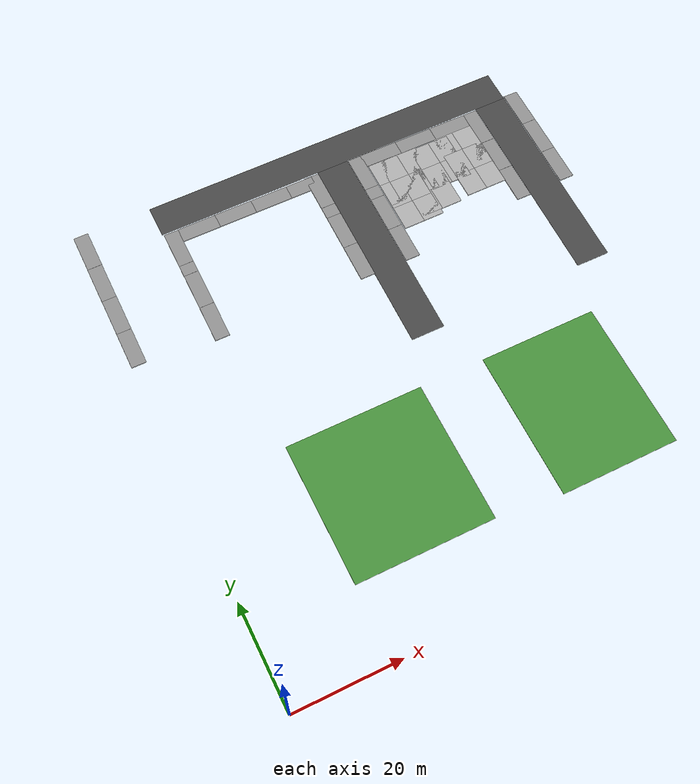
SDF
<sdf version="1.6">
 <world name="default">
  <model name="grey_wall_clone_clone_9_clone_7">
   <static>1</static>
   <link name="link">
    <pose>0 0 1.4 0 -0 0</pose>
    <collision name="collision"><geometry><box><size>7.5 0.2 2.8</size></box></geometry></collision>
    <visual name="visual">
     <cast_shadows>0</cast_shadows>
     <geometry><box><size>7.5 0.2 2.8</size></box></geometry>
     <material>
      <script>
       <uri>model://grey_wall/materials/scripts</uri>
       <uri>model://grey_wall/materials/textures</uri>
       <name>vrc/grey_wall</name>
      </script>
     </material>
    </visual>
   </link>
   <pose>3.09587 70.7495 -0.016993 -1.57343 0.001892 1.56332</pose>
  </model>
  <model name="grey_wall_clone_clone_9_clone_8">
   <static>1</static>
   <link name="link">
    <pose>0 0 1.4 0 -0 0</pose>
    <collision name="collision"><geometry><box><size>7.5 0.2 2.8</size></box></geometry></collision>
    <visual name="visual">
     <cast_shadows>0</cast_shadows>
     <geometry><box><size>7.5 0.2 2.8</size></box></geometry>
     <material>
      <script>
       <uri>model://grey_wall/materials/scripts</uri>
       <uri>model://grey_wall/materials/textures</uri>
       <name>vrc/grey_wall</name>
      </script>
     </material>
    </visual>
   </link>
   <pose>3.15713 78.2163 -0.016993 -1.57343 0.001892 1.56332</pose>
  </model>
  <model name="grey_wall_clone_clone_9_clone_9">
   <static>1</static>
   <link name="link">
    <pose>0 0 1.4 0 -0 0</pose>
    <collision name="collision"><geometry><box><size>7.5 0.2 2.8</size></box></geometry></collision>
    <visual name="visual">
     <cast_shadows>0</cast_shadows>
     <geometry><box><size>7.5 0.2 2.8</size></box></geometry>
     <material>
      <script>
       <uri>model://grey_wall/materials/scripts</uri>
       <uri>model://grey_wall/materials/textures</uri>
       <name>vrc/grey_wall</name>
      </script>
     </material>
    </visual>
   </link>
   <pose>3.19599 85.6747 -0.016993 -1.57343 0.001892 1.56332</pose>
  </model>
  <model name="grey_wall_clone_clone_9_clone_10">
   <static>1</static>
   <link name="link">
    <pose>0 0 1.4 0 -0 0</pose>
    <collision name="collision"><geometry><box><size>7.5 0.2 2.8</size></box></geometry></collision>
    <visual name="visual">
     <cast_shadows>0</cast_shadows>
     <geometry><box><size>7.5 0.2 2.8</size></box></geometry>
     <material>
      <script>
       <uri>model://grey_wall/materials/scripts</uri>
       <uri>model://grey_wall/materials/textures</uri>
       <name>vrc/grey_wall</name>
      </script>
     </material>
    </visual>
   </link>
   <pose>3.27466 93.1318 -0.016993 -1.57343 0.001892 1.56332</pose>
  </model>
  <model name="grey_wall_clone_clone_9_clone_26_clone_0_clone_2_clone_2">
   <static>1</static>
   <link name="link">
    <pose>0 0 1.4 0 -0 0</pose>
    <collision name="collision"><geometry><box><size>7.5 0.2 2.8</size></box></geometry></collision>
    <visual name="visual">
     <cast_shadows>0</cast_shadows>
     <geometry><box><size>7.5 0.2 2.8</size></box></geometry>
     <material>
      <script>
       <uri>model://grey_wall/materials/scripts</uri>
       <uri>model://grey_wall/materials/textures</uri>
       <name>vrc/grey_wall</name>
      </script>
     </material>
    </visual>
   </link>
   <pose>91.1323 72.1084 -0.017166 -1.57343 0.001892 1.56332</pose>
  </model>
  <model name="grey_wall_clone_clone_9_clone_26_clone_0_clone_2_clone_3">
   <static>1</static>
   <link name="link">
    <pose>0 0 1.4 0 -0 0</pose>
    <collision name="collision"><geometry><box><size>7.5 0.2 2.8</size></box></geometry></collision>
    <visual name="visual">
     <cast_shadows>0</cast_shadows>
     <geometry><box><size>7.5 0.2 2.8</size></box></geometry>
     <material>
      <script>
       <uri>model://grey_wall/materials/scripts</uri>
       <uri>model://grey_wall/materials/textures</uri>
       <name>vrc/grey_wall</name>
      </script>
     </material>
    </visual>
   </link>
   <pose>91.2109 79.4437 -0.017166 -1.57343 0.001892 1.56332</pose>
  </model>
  <model name="grey_wall_clone_clone_9_clone_26_clone_0_clone_2_clone_4">
   <static>1</static>
   <link name="link">
    <pose>0 0 1.4 0 -0 0</pose>
    <collision name="collision"><geometry><box><size>7.5 0.2 2.8</size></box></geometry></collision>
    <visual name="visual">
     <cast_shadows>0</cast_shadows>
     <geometry><box><size>7.5 0.2 2.8</size></box></geometry>
     <material>
      <script>
       <uri>model://grey_wall/materials/scripts</uri>
       <uri>model://grey_wall/materials/textures</uri>
       <name>vrc/grey_wall</name>
      </script>
     </material>
    </visual>
   </link>
   <pose>91.2554 86.9199 -0.017166 -1.57343 0.001892 1.56332</pose>
  </model>
  <model name="grey_wall_clone_clone_9_clone_26_clone_0_clone_2_clone_4_clone_2_clone_19">
   <static>1</static>
   <link name="link">
    <pose>0 0 1.4 0 -0 0</pose>
    <collision name="collision"><geometry><box><size>7.5 0.2 2.8</size></box></geometry></collision>
    <visual name="visual">
     <cast_shadows>0</cast_shadows>
     <geometry><box><size>7.5 0.2 2.8</size></box></geometry>
     <material>
      <script>
       <uri>model://grey_wall/materials/scripts</uri>
       <uri>model://grey_wall/materials/textures</uri>
       <name>vrc/grey_wall</name>
      </script>
     </material>
    </visual>
   </link>
   <pose>81.8274 86.4169 -0.017262 -1.57343 0.001892 1.56332</pose>
  </model>
  <model name="grey_wall_clone_clone_9_clone_26_clone_0_clone_2_clone_4_clone_2_clone_20">
   <static>1</static>
   <link name="link">
    <pose>0 0 1.4 0 -0 0</pose>
    <collision name="collision"><geometry><box><size>7.5 0.2 2.8</size></box></geometry></collision>
    <visual name="visual">
     <cast_shadows>0</cast_shadows>
     <geometry><box><size>7.5 0.2 2.8</size></box></geometry>
     <material>
      <script>
       <uri>model://grey_wall/materials/scripts</uri>
       <uri>model://grey_wall/materials/textures</uri>
       <name>vrc/grey_wall</name>
      </script>
     </material>
    </visual>
   </link>
   <pose>81.7695 79.277 -0.017166 -1.57343 0.001892 1.56332</pose>
  </model>
  <model name="grey_wall_clone_clone_9_clone_26_clone_0_clone_2_clone_4_clone_2_clone_21">
   <static>1</static>
   <link name="link">
    <pose>0 0 1.4 0 -0 0</pose>
    <collision name="collision"><geometry><box><size>7.5 0.2 2.8</size></box></geometry></collision>
    <visual name="visual">
     <cast_shadows>0</cast_shadows>
     <geometry><box><size>7.5 0.2 2.8</size></box></geometry>
     <material>
      <script>
       <uri>model://grey_wall/materials/scripts</uri>
       <uri>model://grey_wall/materials/textures</uri>
       <name>vrc/grey_wall</name>
      </script>
     </material>
    </visual>
   </link>
   <pose>81.7291 71.8637 -0.017166 -1.57343 0.001892 1.56332</pose>
  </model>
  <model name="grey_wall_clone_clone_9_clone_26_clone_0_clone_2_clone_4_clone_2_clone_27">
   <static>1</static>
   <link name="link">
    <pose>0 0 1.4 0 -0 0</pose>
    <collision name="collision"><geometry><box><size>7.5 0.2 2.8</size></box></geometry></collision>
    <visual name="visual">
     <cast_shadows>0</cast_shadows>
     <geometry><box><size>7.5 0.2 2.8</size></box></geometry>
     <material>
      <script>
       <uri>model://grey_wall/materials/scripts</uri>
       <uri>model://grey_wall/materials/textures</uri>
       <name>vrc/grey_wall</name>
      </script>
     </material>
    </visual>
   </link>
   <pose>56.6428 69.1546 -0.017166 -1.57343 0.001892 1.56332</pose>
  </model>
  <model name="grey_wall_clone_clone_9_clone_26_clone_0_clone_2_clone_4_clone_2_clone_28">
   <static>1</static>
   <link name="link">
    <pose>0 0 1.4 0 -0 0</pose>
    <collision name="collision"><geometry><box><size>7.5 0.2 2.8</size></box></geometry></collision>
    <visual name="visual">
     <cast_shadows>0</cast_shadows>
     <geometry><box><size>7.5 0.2 2.8</size></box></geometry>
     <material>
      <script>
       <uri>model://grey_wall/materials/scripts</uri>
       <uri>model://grey_wall/materials/textures</uri>
       <name>vrc/grey_wall</name>
      </script>
     </material>
    </visual>
   </link>
   <pose>56.6949 76.5854 -0.017166 -1.57343 0.001892 1.56332</pose>
  </model>
  <model name="grey_wall_clone_clone_9_clone_26_clone_0_clone_2_clone_4_clone_2_clone_29">
   <static>1</static>
   <link name="link">
    <pose>0 0 1.4 0 -0 0</pose>
    <collision name="collision"><geometry><box><size>7.5 0.2 2.8</size></box></geometry></collision>
    <visual name="visual">
     <cast_shadows>0</cast_shadows>
     <geometry><box><size>7.5 0.2 2.8</size></box></geometry>
     <material>
      <script>
       <uri>model://grey_wall/materials/scripts</uri>
       <uri>model://grey_wall/materials/textures</uri>
       <name>vrc/grey_wall</name>
      </script>
     </material>
    </visual>
   </link>
   <pose>56.747 83.9835 -0.017166 -1.57343 0.001892 1.56332</pose>
  </model>
  <model name="grey_wall_clone_clone_9_clone_26_clone_0_clone_2_clone_4_clone_2_clone_30">
   <static>1</static>
   <link name="link">
    <pose>0 0 1.4 0 -0 0</pose>
    <collision name="collision"><geometry><box><size>7.5 0.2 2.8</size></box></geometry></collision>
    <visual name="visual">
     <cast_shadows>0</cast_shadows>
     <geometry><box><size>7.5 0.2 2.8</size></box></geometry>
     <material>
      <script>
       <uri>model://grey_wall/materials/scripts</uri>
       <uri>model://grey_wall/materials/textures</uri>
       <name>vrc/grey_wall</name>
      </script>
     </material>
    </visual>
   </link>
   <pose>56.771 86.5557 -0.017166 -1.57343 0.001892 1.56332</pose>
  </model>
  <model name="grey_wall_clone_clone_9_clone_26_clone_0_clone_2_clone_4_clone_2_clone_33">
   <static>1</static>
   <link name="link">
    <pose>0 0 1.4 0 -0 0</pose>
    <collision name="collision"><geometry><box><size>7.5 0.2 2.8</size></box></geometry></collision>
    <visual name="visual">
     <cast_shadows>0</cast_shadows>
     <geometry><box><size>7.5 0.2 2.8</size></box></geometry>
     <material>
      <script>
       <uri>model://grey_wall/materials/scripts</uri>
       <uri>model://grey_wall/materials/textures</uri>
       <name>vrc/grey_wall</name>
      </script>
     </material>
    </visual>
   </link>
   <pose>47.4381 69.2125 -0.017166 -1.57343 0.001892 1.56332</pose>
  </model>
  <model name="grey_wall_clone_clone_9_clone_26_clone_0_clone_2_clone_4_clone_2_clone_34">
   <static>1</static>
   <link name="link">
    <pose>0 0 1.4 0 -0 0</pose>
    <collision name="collision"><geometry><box><size>7.5 0.2 2.8</size></box></geometry></collision>
    <visual name="visual">
     <cast_shadows>0</cast_shadows>
     <geometry><box><size>7.5 0.2 2.8</size></box></geometry>
     <material>
      <script>
       <uri>model://grey_wall/materials/scripts</uri>
       <uri>model://grey_wall/materials/textures</uri>
       <name>vrc/grey_wall</name>
      </script>
     </material>
    </visual>
   </link>
   <pose>47.4903 76.6903 -0.017166 -1.57343 0.001892 1.56332</pose>
  </model>
  <model name="grey_wall_clone_clone_9_clone_26_clone_0_clone_2_clone_4_clone_2_clone_35">
   <static>1</static>
   <link name="link">
    <pose>0 0 1.4 0 -0 0</pose>
    <collision name="collision"><geometry><box><size>7.5 0.2 2.8</size></box></geometry></collision>
    <visual name="visual">
     <cast_shadows>0</cast_shadows>
     <geometry><box><size>7.5 0.2 2.8</size></box></geometry>
     <material>
      <script>
       <uri>model://grey_wall/materials/scripts</uri>
       <uri>model://grey_wall/materials/textures</uri>
       <name>vrc/grey_wall</name>
      </script>
     </material>
    </visual>
   </link>
   <pose>47.5425 83.9495 -0.017166 -1.57343 0.001892 1.56332</pose>
  </model>
  <model name="grey_wall_clone_clone_9_clone_26_clone_0_clone_2_clone_4_clone_2_clone_36">
   <static>1</static>
   <link name="link">
    <pose>0 0 1.4 0 -0 0</pose>
    <collision name="collision"><geometry><box><size>7.5 0.2 2.8</size></box></geometry></collision>
    <visual name="visual">
     <cast_shadows>0</cast_shadows>
     <geometry><box><size>7.5 0.2 2.8</size></box></geometry>
     <material>
      <script>
       <uri>model://grey_wall/materials/scripts</uri>
       <uri>model://grey_wall/materials/textures</uri>
       <name>vrc/grey_wall</name>
      </script>
     </material>
    </visual>
   </link>
   <pose>47.5621 86.4063 -0.017166 -1.57343 0.001892 1.56332</pose>
  </model>
  <model name="grey_wall_clone_clone_9_clone_26_clone_0_clone_2_clone_4_clone_2_clone_39">
   <static>1</static>
   <link name="link">
    <pose>0 0 1.4 0 -0 0</pose>
    <collision name="collision"><geometry><box><size>7.5 0.2 2.8</size></box></geometry></collision>
    <visual name="visual">
     <cast_shadows>0</cast_shadows>
     <geometry><box><size>7.5 0.2 2.8</size></box></geometry>
     <material>
      <script>
       <uri>model://grey_wall/materials/scripts</uri>
       <uri>model://grey_wall/materials/textures</uri>
       <name>vrc/grey_wall</name>
      </script>
     </material>
    </visual>
   </link>
   <pose>18.5087 69.2251 -0.017166 -1.57343 0.001892 1.56332</pose>
  </model>
  <model name="grey_wall_clone_clone_9_clone_26_clone_0_clone_2_clone_4_clone_2_clone_40">
   <static>1</static>
   <link name="link">
    <pose>0 0 1.4 0 -0 0</pose>
    <collision name="collision"><geometry><box><size>7.5 0.2 2.8</size></box></geometry></collision>
    <visual name="visual">
     <cast_shadows>0</cast_shadows>
     <geometry><box><size>7.5 0.2 2.8</size></box></geometry>
     <material>
      <script>
       <uri>model://grey_wall/materials/scripts</uri>
       <uri>model://grey_wall/materials/textures</uri>
       <name>vrc/grey_wall</name>
      </script>
     </material>
    </visual>
   </link>
   <pose>18.5782 76.6614 -0.017166 -1.57343 0.001892 1.56332</pose>
  </model>
  <model name="grey_wall_clone_clone_9_clone_26_clone_0_clone_2_clone_4_clone_2_clone_41">
   <static>1</static>
   <link name="link">
    <pose>0 0 1.4 0 -0 0</pose>
    <collision name="collision"><geometry><box><size>7.5 0.2 2.8</size></box></geometry></collision>
    <visual name="visual">
     <cast_shadows>0</cast_shadows>
     <geometry><box><size>7.5 0.2 2.8</size></box></geometry>
     <material>
      <script>
       <uri>model://grey_wall/materials/scripts</uri>
       <uri>model://grey_wall/materials/textures</uri>
       <name>vrc/grey_wall</name>
      </script>
     </material>
    </visual>
   </link>
   <pose>18.6154 84.0721 -0.017166 -1.57343 0.001892 1.56332</pose>
  </model>
  <model name="grey_wall_clone_clone_9_clone_26_clone_0_clone_2_clone_4_clone_2_clone_42">
   <static>1</static>
   <link name="link">
    <pose>0 0 1.4 0 -0 0</pose>
    <collision name="collision"><geometry><box><size>7.5 0.2 2.8</size></box></geometry></collision>
    <visual name="visual">
     <cast_shadows>0</cast_shadows>
     <geometry><box><size>7.5 0.2 2.8</size></box></geometry>
     <material>
      <script>
       <uri>model://grey_wall/materials/scripts</uri>
       <uri>model://grey_wall/materials/textures</uri>
       <name>vrc/grey_wall</name>
      </script>
     </material>
    </visual>
   </link>
   <pose>18.6449 86.4101 -0.017166 -1.57343 0.001892 1.56332</pose>
  </model>
  <model name="grey_wall_clone_clone_10_clone_16">
   <static>1</static>
   <link name="link">
    <pose>0 0 1.4 0 -0 0</pose>
    <collision name="collision"><geometry><box><size>7.5 0.2 2.8</size></box></geometry></collision>
    <visual name="visual">
     <cast_shadows>0</cast_shadows>
     <geometry><box><size>7.5 0.2 2.8</size></box></geometry>
     <material>
      <script>
       <uri>model://grey_wall/materials/scripts</uri>
       <uri>model://grey_wall/materials/textures</uri>
       <name>vrc/grey_wall</name>
      </script>
     </material>
    </visual>
   </link>
   <pose>22.3675 90.183 -0.013396 -1.5862 0.002658 3.13547</pose>
  </model>
  <model name="grey_wall_clone_clone_10_clone_17">
   <static>1</static>
   <link name="link">
    <pose>0 0 1.4 0 -0 0</pose>
    <collision name="collision"><geometry><box><size>7.5 0.2 2.8</size></box></geometry></collision>
    <visual name="visual">
     <cast_shadows>0</cast_shadows>
     <geometry><box><size>7.5 0.2 2.8</size></box></geometry>
     <material>
      <script>
       <uri>model://grey_wall/materials/scripts</uri>
       <uri>model://grey_wall/materials/textures</uri>
       <name>vrc/grey_wall</name>
      </script>
     </material>
    </visual>
   </link>
   <pose>29.7513 90.1649 -0.013396 -1.5862 0.002658 3.13547</pose>
  </model>
  <model name="grey_wall_clone_clone_10_clone_18">
   <static>1</static>
   <link name="link">
    <pose>0 0 1.4 0 -0 0</pose>
    <collision name="collision"><geometry><box><size>7.5 0.2 2.8</size></box></geometry></collision>
    <visual name="visual">
     <cast_shadows>0</cast_shadows>
     <geometry><box><size>7.5 0.2 2.8</size></box></geometry>
     <material>
      <script>
       <uri>model://grey_wall/materials/scripts</uri>
       <uri>model://grey_wall/materials/textures</uri>
       <name>vrc/grey_wall</name>
      </script>
     </material>
    </visual>
   </link>
   <pose>37.0434 90.1315 -0.013396 -1.5862 0.002658 3.13547</pose>
  </model>
  <model name="grey_wall_clone_clone_10_clone_19">
   <static>1</static>
   <link name="link">
    <pose>0 0 1.4 0 -0 0</pose>
    <collision name="collision"><geometry><box><size>7.5 0.2 2.8</size></box></geometry></collision>
    <visual name="visual">
     <cast_shadows>0</cast_shadows>
     <geometry><box><size>7.5 0.2 2.8</size></box></geometry>
     <material>
      <script>
       <uri>model://grey_wall/materials/scripts</uri>
       <uri>model://grey_wall/materials/textures</uri>
       <name>vrc/grey_wall</name>
      </script>
     </material>
    </visual>
   </link>
   <pose>42.3302 90.107 -0.013396 -1.5862 0.002658 3.13547</pose>
  </model>
  <model name="grey_wall_clone_clone_10_clone_23_clone_clone">
   <static>1</static>
   <link name="link">
    <pose>0 0 1.4 0 -0 0</pose>
    <collision name="collision"><geometry><box><size>7.5 0.2 2.8</size></box></geometry></collision>
    <visual name="visual">
     <cast_shadows>0</cast_shadows>
     <geometry><box><size>7.5 0.2 2.8</size></box></geometry>
     <material>
      <script>
       <uri>model://grey_wall/materials/scripts</uri>
       <uri>model://grey_wall/materials/textures</uri>
       <name>vrc/grey_wall</name>
      </script>
     </material>
    </visual>
   </link>
   <pose>75.3474 90.1916 -0.013396 -1.5862 0.002658 3.13547</pose>
  </model>
  <model name="grey_wall_clone_clone_10_clone_23_clone_clone_0">
   <static>1</static>
   <link name="link">
    <pose>0 0 1.4 0 -0 0</pose>
    <collision name="collision"><geometry><box><size>7.5 0.2 2.8</size></box></geometry></collision>
    <visual name="visual">
     <cast_shadows>0</cast_shadows>
     <geometry><box><size>7.5 0.2 2.8</size></box></geometry>
     <material>
      <script>
       <uri>model://grey_wall/materials/scripts</uri>
       <uri>model://grey_wall/materials/textures</uri>
       <name>vrc/grey_wall</name>
      </script>
     </material>
    </visual>
   </link>
   <pose>67.8565 90.2403 -0.013396 -1.5862 0.002658 3.13547</pose>
  </model>
  <model name="grey_wall_clone_clone_10_clone_23_clone_clone_1">
   <static>1</static>
   <link name="link">
    <pose>0 0 1.4 0 -0 0</pose>
    <collision name="collision"><geometry><box><size>7.5 0.2 2.8</size></box></geometry></collision>
    <visual name="visual">
     <cast_shadows>0</cast_shadows>
     <geometry><box><size>7.5 0.2 2.8</size></box></geometry>
     <material>
      <script>
       <uri>model://grey_wall/materials/scripts</uri>
       <uri>model://grey_wall/materials/textures</uri>
       <name>vrc/grey_wall</name>
      </script>
     </material>
    </visual>
   </link>
   <pose>60.364 90.3071 0.001726 -1.5862 0.002658 3.13547</pose>
  </model>
  <model name="Road_clone_0">
   <static>1</static>
   <link name="link_0">
    <inertial>
     <mass>3902.93</mass>
     <inertia><ixx>13288.4</ixx><ixy>0</ixy><ixz>0</ixz><iyy>107351</iyy><iyz>0</iyz><izz>120639</izz></inertia>
    </inertial>
    <gravity>0</gravity>
    <self_collide>1</self_collide>
    <visual name="visual">
     <geometry><box><size>72.6629 6.39189 0.01701</size></box></geometry>
     <material>
      <lighting>1</lighting>
      <script><uri>file://media/materials/scripts/gazebo.material</uri><name>Gazebo/Road</name></script>
      <shader type="pixel"><normal_map>__default__</normal_map></shader>
      <ambient>0.1 0.1 0.1 1</ambient>
      <diffuse>0.8 0.8 0.8 1</diffuse>
      <specular>0.01 0.01 0.01 1</specular>
      <emissive>0 0 0 1</emissive>
     </material>
    </visual>
    <collision name="collision">
     <geometry><box><size>72.6629 6.39189 0.01701</size></box></geometry>
     <surface>
      <friction>
       <ode><mu>1</mu><mu2>1</mu2><fdir1>0 0 0</fdir1><slip1>0</slip1><slip2>0</slip2></ode>
       <torsional>
        <coefficient>1</coefficient>
        <patch_radius>0</patch_radius>
        <surface_radius>0</surface_radius>
        <use_patch_radius>1</use_patch_radius>
        <ode><slip>0</slip></ode>
       </torsional>
      </friction>
      <bounce><restitution_coefficient>0</restitution_coefficient><threshold>1e+06</threshold></bounce>
      <contact>
       <collide_without_contact>0</collide_without_contact>
       <collide_without_contact_bitmask>1</collide_without_contact_bitmask>
       <collide_bitmask>1</collide_bitmask>
       <ode>
        <soft_cfm>0</soft_cfm>
        <soft_erp>0.2</soft_erp>
        <kp>1e+13</kp>
        <kd>1</kd>
        <max_vel>0.01</max_vel>
        <min_depth>0</min_depth>
       </ode>
       <bullet>
        <split_impulse>1</split_impulse>
        <split_impulse_penetration_threshold>-0.01</split_impulse_penetration_threshold>
        <soft_cfm>0</soft_cfm>
        <soft_erp>0.2</soft_erp>
        <kp>1e+13</kp>
        <kd>1</kd>
       </bullet>
      </contact>
     </surface>
    </collision>
   </link>
   <static>0</static>
   <pose>51.9427 93.6278 0 0 -0 0</pose>
  </model>
  <model name="Road_0_clone_0_clone">
   <static>1</static>
   <link name="link_0">
    <inertial>
     <mass>3902.93</mass>
     <inertia><ixx>13288.4</ixx><ixy>0</ixy><ixz>0</ixz><iyy>107351</iyy><iyz>0</iyz><izz>120639</izz></inertia>
    </inertial>
    <gravity>0</gravity>
    <self_collide>1</self_collide>
    <visual name="visual">
     <geometry><box><size>40.5376 6.39189 0.01701</size></box></geometry>
     <material>
      <lighting>1</lighting>
      <script><uri>file://media/materials/scripts/gazebo.material</uri><name>Gazebo/Road</name></script>
      <shader type="pixel"><normal_map>__default__</normal_map></shader>
      <ambient>0.1 0.1 0.1 1</ambient>
      <diffuse>0.8 0.8 0.8 1</diffuse>
      <specular>0.01 0.01 0.01 1</specular>
      <emissive>0 0 0 1</emissive>
     </material>
    </visual>
    <collision name="collision">
     <geometry><box><size>40.5376 6.39189 0.01701</size></box></geometry>
     <surface>
      <friction>
       <ode><mu>1</mu><mu2>1</mu2><fdir1>0 0 0</fdir1><slip1>0</slip1><slip2>0</slip2></ode>
       <torsional>
        <coefficient>1</coefficient>
        <patch_radius>0</patch_radius>
        <surface_radius>0</surface_radius>
        <use_patch_radius>1</use_patch_radius>
        <ode><slip>0</slip></ode>
       </torsional>
      </friction>
      <bounce><restitution_coefficient>0</restitution_coefficient><threshold>1e+06</threshold></bounce>
      <contact>
       <collide_without_contact>0</collide_without_contact>
       <collide_without_contact_bitmask>1</collide_without_contact_bitmask>
       <collide_bitmask>1</collide_bitmask>
       <ode>
        <soft_cfm>0</soft_cfm>
        <soft_erp>0.2</soft_erp>
        <kp>1e+13</kp>
        <kd>1</kd>
        <max_vel>0.01</max_vel>
        <min_depth>0</min_depth>
       </ode>
       <bullet>
        <split_impulse>1</split_impulse>
        <split_impulse_penetration_threshold>-0.01</split_impulse_penetration_threshold>
        <soft_cfm>0</soft_cfm>
        <soft_erp>0.2</soft_erp>
        <kp>1e+13</kp>
        <kd>1</kd>
       </bullet>
      </contact>
     </surface>
    </collision>
   </link>
   <static>0</static>
   <pose>84.9823 70.7431 0 0 0 -1.57903</pose>
  </model>
  <model name="Road_0_clone_0_clone_clone">
   <static>1</static>
   <link name="link_0">
    <inertial>
     <mass>3902.93</mass>
     <inertia><ixx>13288.4</ixx><ixy>0</ixy><ixz>0</ixz><iyy>107351</iyy><iyz>0</iyz><izz>120639</izz></inertia>
    </inertial>
    <gravity>0</gravity>
    <self_collide>1</self_collide>
    <visual name="visual">
     <geometry><box><size>40.5376 6.39189 0.01701</size></box></geometry>
     <material>
      <lighting>1</lighting>
      <script><uri>file://media/materials/scripts/gazebo.material</uri><name>Gazebo/Road</name></script>
      <shader type="pixel"><normal_map>__default__</normal_map></shader>
      <ambient>0.1 0.1 0.1 1</ambient>
      <diffuse>0.8 0.8 0.8 1</diffuse>
      <specular>0.01 0.01 0.01 1</specular>
      <emissive>0 0 0 1</emissive>
     </material>
    </visual>
    <collision name="collision">
     <geometry><box><size>40.5376 6.39189 0.01701</size></box></geometry>
     <surface>
      <friction>
       <ode><mu>1</mu><mu2>1</mu2><fdir1>0 0 0</fdir1><slip1>0</slip1><slip2>0</slip2></ode>
       <torsional>
        <coefficient>1</coefficient>
        <patch_radius>0</patch_radius>
        <surface_radius>0</surface_radius>
        <use_patch_radius>1</use_patch_radius>
        <ode><slip>0</slip></ode>
       </torsional>
      </friction>
      <bounce><restitution_coefficient>0</restitution_coefficient><threshold>1e+06</threshold></bounce>
      <contact>
       <collide_without_contact>0</collide_without_contact>
       <collide_without_contact_bitmask>1</collide_without_contact_bitmask>
       <collide_bitmask>1</collide_bitmask>
       <ode>
        <soft_cfm>0</soft_cfm>
        <soft_erp>0.2</soft_erp>
        <kp>1e+13</kp>
        <kd>1</kd>
        <max_vel>0.01</max_vel>
        <min_depth>0</min_depth>
       </ode>
       <bullet>
        <split_impulse>1</split_impulse>
        <split_impulse_penetration_threshold>-0.01</split_impulse_penetration_threshold>
        <soft_cfm>0</soft_cfm>
        <soft_erp>0.2</soft_erp>
        <kp>1e+13</kp>
        <kd>1</kd>
       </bullet>
      </contact>
     </surface>
    </collision>
   </link>
   <static>0</static>
   <pose>50.572 70.4155 0 0 0 -1.57903</pose>
  </model>
  <model name="Grass_cube_clone">
   <link name="link_0">
    <inertial>
     <mass>57.0556</mass>
     <inertia><ixx>2365.49</ixx><ixy>0</ixy><ixz>0</ixz><iyy>3804.86</iyy><iyz>0</iyz><izz>6170.31</izz></inertia>
    </inertial>
    <pose>-61.5077 -41.1774 0 0 0 -1.57123</pose>
    <gravity>0</gravity>
    <self_collide>1</self_collide>
    <visual name="visual">
     <geometry><box><size>28.2885 22.3049 0.068473</size></box></geometry>
     <material>
      <lighting>1</lighting>
      <script><uri>file://media/materials/scripts/gazebo.material</uri><name>Gazebo/Grass</name></script>
      <shader type="vertex"><normal_map>__default__</normal_map></shader>
      <ambient>0.3 0.3 0.3 1</ambient>
      <diffuse>0.7 0.7 0.7 1</diffuse>
      <specular>0.01 0.01 0.01 1</specular>
      <emissive>0 0 0 1</emissive>
     </material>
    </visual>
    <collision name="collision_0">
     <geometry><box><size>28.2885 22.3049 0.068473</size></box></geometry>
     <surface>
      <friction>
       <ode><mu>1</mu><mu2>1</mu2><fdir1>0 0 0</fdir1><slip1>0</slip1><slip2>0</slip2></ode>
       <torsional>
        <coefficient>1</coefficient>
        <patch_radius>0</patch_radius>
        <surface_radius>0</surface_radius>
        <use_patch_radius>1</use_patch_radius>
        <ode><slip>0</slip></ode>
       </torsional>
      </friction>
      <bounce><restitution_coefficient>0</restitution_coefficient><threshold>1e+06</threshold></bounce>
      <contact>
       <collide_without_contact>0</collide_without_contact>
       <collide_without_contact_bitmask>1</collide_without_contact_bitmask>
       <collide_bitmask>1</collide_bitmask>
       <ode>
        <soft_cfm>0</soft_cfm>
        <soft_erp>0.2</soft_erp>
        <kp>1e+13</kp>
        <kd>1</kd>
        <max_vel>0.01</max_vel>
        <min_depth>0</min_depth>
       </ode>
       <bullet>
        <split_impulse>1</split_impulse>
        <split_impulse_penetration_threshold>-0.01</split_impulse_penetration_threshold>
        <soft_cfm>0</soft_cfm>
        <soft_erp>0.2</soft_erp>
        <kp>1e+13</kp>
        <kd>1</kd>
       </bullet>
      </contact>
     </surface>
    </collision>
   </link>
   <static>1</static>
   <pose>129.196 68.113 0 0 -0 0</pose>
  </model>
  <model name="Grass_cube3_clone">
   <link name="link_0">
    <inertial>
     <mass>63.612</mass>
     <inertia><ixx>3576.46</ixx><ixy>0</ixy><ixz>0</ixz><iyy>3888.41</iyy><iyz>0</iyz><izz>7464.81</izz></inertia>
    </inertial>
    <pose>-61.4531 -41.3757 0 0 0 -1.57123</pose>
    <gravity>0</gravity>
    <self_collide>1</self_collide>
    <visual name="visual">
     <geometry><box><size>27.0835 25.9744 0.068473</size></box></geometry>
     <material>
      <lighting>1</lighting>
      <script><uri>file://media/materials/scripts/gazebo.material</uri><name>Gazebo/Grass</name></script>
      <shader type="vertex"><normal_map>__default__</normal_map></shader>
      <ambient>0.3 0.3 0.3 1</ambient>
      <diffuse>0.7 0.7 0.7 1</diffuse>
      <specular>0.01 0.01 0.01 1</specular>
      <emissive>0 0 0 1</emissive>
     </material>
    </visual>
    <collision name="collision_0">
     <geometry><box><size>27.0835 25.9744 0.068473</size></box></geometry>
     <surface>
      <friction>
       <ode><mu>1</mu><mu2>1</mu2><fdir1>0 0 0</fdir1><slip1>0</slip1><slip2>0</slip2></ode>
       <torsional>
        <coefficient>1</coefficient>
        <patch_radius>0</patch_radius>
        <surface_radius>0</surface_radius>
        <use_patch_radius>1</use_patch_radius>
        <ode><slip>0</slip></ode>
       </torsional>
      </friction>
      <bounce><restitution_coefficient>0</restitution_coefficient><threshold>1e+06</threshold></bounce>
      <contact>
       <collide_without_contact>0</collide_without_contact>
       <collide_without_contact_bitmask>1</collide_without_contact_bitmask>
       <collide_bitmask>1</collide_bitmask>
       <ode>
        <soft_cfm>0</soft_cfm>
        <soft_erp>0.2</soft_erp>
        <kp>1e+13</kp>
        <kd>1</kd>
        <max_vel>0.01</max_vel>
        <min_depth>0</min_depth>
       </ode>
       <bullet>
        <split_impulse>1</split_impulse>
        <split_impulse_penetration_threshold>-0.01</split_impulse_penetration_threshold>
        <soft_cfm>0</soft_cfm>
        <soft_erp>0.2</soft_erp>
        <kp>1e+13</kp>
        <kd>1</kd>
       </bullet>
      </contact>
     </surface>
    </collision>
   </link>
   <static>1</static>
   <pose>92.6869 69.0465 0 0 -0 0</pose>
  </model>
  <model name="mud_box_clone_2">
   <static>1</static>
   <link name="link">
    <collision name="collision"><geometry><box><size>8 10 0.2</size></box></geometry></collision>
    <visual name="visual_1">
     <pose>-2 2.5 0 0 -0 0</pose>
     <cast_shadows>0</cast_shadows>
     <geometry><box><size>4 5 0.2</size></box></geometry>
     <material>
      <script>
       <uri>model://mud_box/materials/scripts</uri>
       <uri>model://mud_box/materials/textures</uri>
       <name>vrc/mud</name>
      </script>
     </material>
    </visual>
    <visual name="visual_2">
     <pose>2 2.5 0 0 -0 0</pose>
     <cast_shadows>0</cast_shadows>
     <geometry><box><size>4 5 0.2</size></box></geometry>
     <material>
      <script>
       <uri>model://mud_box/materials/scripts</uri>
       <uri>model://mud_box/materials/textures</uri>
       <name>vrc/mud</name>
      </script>
     </material>
    </visual>
    <visual name="visual_3">
     <pose>2 -2.5 0 0 -0 0</pose>
     <cast_shadows>0</cast_shadows>
     <geometry><box><size>4 5 0.2</size></box></geometry>
     <material>
      <script>
       <uri>model://mud_box/materials/scripts</uri>
       <uri>model://mud_box/materials/textures</uri>
       <name>vrc/mud</name>
      </script>
     </material>
    </visual>
    <visual name="visual_4">
     <pose>-2 -2.5 0 0 -0 0</pose>
     <cast_shadows>0</cast_shadows>
     <geometry><box><size>4 5 0.2</size></box></geometry>
     <material>
      <script>
       <uri>model://mud_box/materials/scripts</uri>
       <uri>model://mud_box/materials/textures</uri>
       <name>vrc/mud</name>
      </script>
     </material>
    </visual>
   </link>
   <pose>74.9725 78.1125 0 0 -0 0</pose>
  </model>
  <model name="mud_box_clone_3">
   <static>1</static>
   <link name="link">
    <collision name="collision"><geometry><box><size>8 10 0.2</size></box></geometry></collision>
    <visual name="visual_1">
     <pose>-2 2.5 0 0 -0 0</pose>
     <cast_shadows>0</cast_shadows>
     <geometry><box><size>4 5 0.2</size></box></geometry>
     <material>
      <script>
       <uri>model://mud_box/materials/scripts</uri>
       <uri>model://mud_box/materials/textures</uri>
       <name>vrc/mud</name>
      </script>
     </material>
    </visual>
    <visual name="visual_2">
     <pose>2 2.5 0 0 -0 0</pose>
     <cast_shadows>0</cast_shadows>
     <geometry><box><size>4 5 0.2</size></box></geometry>
     <material>
      <script>
       <uri>model://mud_box/materials/scripts</uri>
       <uri>model://mud_box/materials/textures</uri>
       <name>vrc/mud</name>
      </script>
     </material>
    </visual>
    <visual name="visual_3">
     <pose>2 -2.5 0 0 -0 0</pose>
     <cast_shadows>0</cast_shadows>
     <geometry><box><size>4 5 0.2</size></box></geometry>
     <material>
      <script>
       <uri>model://mud_box/materials/scripts</uri>
       <uri>model://mud_box/materials/textures</uri>
       <name>vrc/mud</name>
      </script>
     </material>
    </visual>
    <visual name="visual_4">
     <pose>-2 -2.5 0 0 -0 0</pose>
     <cast_shadows>0</cast_shadows>
     <geometry><box><size>4 5 0.2</size></box></geometry>
     <material>
      <script>
       <uri>model://mud_box/materials/scripts</uri>
       <uri>model://mud_box/materials/textures</uri>
       <name>vrc/mud</name>
      </script>
     </material>
    </visual>
   </link>
   <pose>75.0437 82.3975 0 0 -0 0</pose>
  </model>
  <model name="mud_box_clone_4">
   <static>1</static>
   <link name="link">
    <collision name="collision"><geometry><box><size>8 10 0.2</size></box></geometry></collision>
    <visual name="visual_1">
     <pose>-2 2.5 0 0 -0 0</pose>
     <cast_shadows>0</cast_shadows>
     <geometry><box><size>4 5 0.2</size></box></geometry>
     <material>
      <script>
       <uri>model://mud_box/materials/scripts</uri>
       <uri>model://mud_box/materials/textures</uri>
       <name>vrc/mud</name>
      </script>
     </material>
    </visual>
    <visual name="visual_2">
     <pose>2 2.5 0 0 -0 0</pose>
     <cast_shadows>0</cast_shadows>
     <geometry><box><size>4 5 0.2</size></box></geometry>
     <material>
      <script>
       <uri>model://mud_box/materials/scripts</uri>
       <uri>model://mud_box/materials/textures</uri>
       <name>vrc/mud</name>
      </script>
     </material>
    </visual>
    <visual name="visual_3">
     <pose>2 -2.5 0 0 -0 0</pose>
     <cast_shadows>0</cast_shadows>
     <geometry><box><size>4 5 0.2</size></box></geometry>
     <material>
      <script>
       <uri>model://mud_box/materials/scripts</uri>
       <uri>model://mud_box/materials/textures</uri>
       <name>vrc/mud</name>
      </script>
     </material>
    </visual>
    <visual name="visual_4">
     <pose>-2 -2.5 0 0 -0 0</pose>
     <cast_shadows>0</cast_shadows>
     <geometry><box><size>4 5 0.2</size></box></geometry>
     <material>
      <script>
       <uri>model://mud_box/materials/scripts</uri>
       <uri>model://mud_box/materials/textures</uri>
       <name>vrc/mud</name>
      </script>
     </material>
    </visual>
   </link>
   <pose>69.7169 82.1895 0 0 -0 0</pose>
  </model>
  <model name="mud_box_clone_5">
   <static>1</static>
   <link name="link">
    <collision name="collision"><geometry><box><size>8 10 0.2</size></box></geometry></collision>
    <visual name="visual_1">
     <pose>-2 2.5 0 0 -0 0</pose>
     <cast_shadows>0</cast_shadows>
     <geometry><box><size>4 5 0.2</size></box></geometry>
     <material>
      <script>
       <uri>model://mud_box/materials/scripts</uri>
       <uri>model://mud_box/materials/textures</uri>
       <name>vrc/mud</name>
      </script>
     </material>
    </visual>
    <visual name="visual_2">
     <pose>2 2.5 0 0 -0 0</pose>
     <cast_shadows>0</cast_shadows>
     <geometry><box><size>4 5 0.2</size></box></geometry>
     <material>
      <script>
       <uri>model://mud_box/materials/scripts</uri>
       <uri>model://mud_box/materials/textures</uri>
       <name>vrc/mud</name>
      </script>
     </material>
    </visual>
    <visual name="visual_3">
     <pose>2 -2.5 0 0 -0 0</pose>
     <cast_shadows>0</cast_shadows>
     <geometry><box><size>4 5 0.2</size></box></geometry>
     <material>
      <script>
       <uri>model://mud_box/materials/scripts</uri>
       <uri>model://mud_box/materials/textures</uri>
       <name>vrc/mud</name>
      </script>
     </material>
    </visual>
    <visual name="visual_4">
     <pose>-2 -2.5 0 0 -0 0</pose>
     <cast_shadows>0</cast_shadows>
     <geometry><box><size>4 5 0.2</size></box></geometry>
     <material>
      <script>
       <uri>model://mud_box/materials/scripts</uri>
       <uri>model://mud_box/materials/textures</uri>
       <name>vrc/mud</name>
      </script>
     </material>
    </visual>
   </link>
   <pose>62.9943 82.3728 0 0 -0 0</pose>
  </model>
  <model name="mud_box_clone_6">
   <static>1</static>
   <link name="link">
    <collision name="collision"><geometry><box><size>8 10 0.2</size></box></geometry></collision>
    <visual name="visual_1">
     <pose>-2 2.5 0 0 -0 0</pose>
     <cast_shadows>0</cast_shadows>
     <geometry><box><size>4 5 0.2</size></box></geometry>
     <material>
      <script>
       <uri>model://mud_box/materials/scripts</uri>
       <uri>model://mud_box/materials/textures</uri>
       <name>vrc/mud</name>
      </script>
     </material>
    </visual>
    <visual name="visual_2">
     <pose>2 2.5 0 0 -0 0</pose>
     <cast_shadows>0</cast_shadows>
     <geometry><box><size>4 5 0.2</size></box></geometry>
     <material>
      <script>
       <uri>model://mud_box/materials/scripts</uri>
       <uri>model://mud_box/materials/textures</uri>
       <name>vrc/mud</name>
      </script>
     </material>
    </visual>
    <visual name="visual_3">
     <pose>2 -2.5 0 0 -0 0</pose>
     <cast_shadows>0</cast_shadows>
     <geometry><box><size>4 5 0.2</size></box></geometry>
     <material>
      <script>
       <uri>model://mud_box/materials/scripts</uri>
       <uri>model://mud_box/materials/textures</uri>
       <name>vrc/mud</name>
      </script>
     </material>
    </visual>
    <visual name="visual_4">
     <pose>-2 -2.5 0 0 -0 0</pose>
     <cast_shadows>0</cast_shadows>
     <geometry><box><size>4 5 0.2</size></box></geometry>
     <material>
      <script>
       <uri>model://mud_box/materials/scripts</uri>
       <uri>model://mud_box/materials/textures</uri>
       <name>vrc/mud</name>
      </script>
     </material>
    </visual>
   </link>
   <pose>60.8934 76.7165 0 0 -0 0</pose>
  </model>
  <model name="mud_box_clone_7">
   <static>1</static>
   <link name="link">
    <collision name="collision"><geometry><box><size>8 10 0.2</size></box></geometry></collision>
    <visual name="visual_1">
     <pose>-2 2.5 0 0 -0 0</pose>
     <cast_shadows>0</cast_shadows>
     <geometry><box><size>4 5 0.2</size></box></geometry>
     <material>
      <script>
       <uri>model://mud_box/materials/scripts</uri>
       <uri>model://mud_box/materials/textures</uri>
       <name>vrc/mud</name>
      </script>
     </material>
    </visual>
    <visual name="visual_2">
     <pose>2 2.5 0 0 -0 0</pose>
     <cast_shadows>0</cast_shadows>
     <geometry><box><size>4 5 0.2</size></box></geometry>
     <material>
      <script>
       <uri>model://mud_box/materials/scripts</uri>
       <uri>model://mud_box/materials/textures</uri>
       <name>vrc/mud</name>
      </script>
     </material>
    </visual>
    <visual name="visual_3">
     <pose>2 -2.5 0 0 -0 0</pose>
     <cast_shadows>0</cast_shadows>
     <geometry><box><size>4 5 0.2</size></box></geometry>
     <material>
      <script>
       <uri>model://mud_box/materials/scripts</uri>
       <uri>model://mud_box/materials/textures</uri>
       <name>vrc/mud</name>
      </script>
     </material>
    </visual>
    <visual name="visual_4">
     <pose>-2 -2.5 0 0 -0 0</pose>
     <cast_shadows>0</cast_shadows>
     <geometry><box><size>4 5 0.2</size></box></geometry>
     <material>
      <script>
       <uri>model://mud_box/materials/scripts</uri>
       <uri>model://mud_box/materials/textures</uri>
       <name>vrc/mud</name>
      </script>
     </material>
    </visual>
   </link>
   <pose>65.2324 77.6673 0 0 -0 0</pose>
  </model>
  <model name="mud_box_clone_8">
   <static>1</static>
   <link name="link">
    <collision name="collision"><geometry><box><size>8 10 0.2</size></box></geometry></collision>
    <visual name="visual_1">
     <pose>-2 2.5 0 0 -0 0</pose>
     <cast_shadows>0</cast_shadows>
     <geometry><box><size>4 5 0.2</size></box></geometry>
     <material>
      <script>
       <uri>model://mud_box/materials/scripts</uri>
       <uri>model://mud_box/materials/textures</uri>
       <name>vrc/mud</name>
      </script>
     </material>
    </visual>
    <visual name="visual_2">
     <pose>2 2.5 0 0 -0 0</pose>
     <cast_shadows>0</cast_shadows>
     <geometry><box><size>4 5 0.2</size></box></geometry>
     <material>
      <script>
       <uri>model://mud_box/materials/scripts</uri>
       <uri>model://mud_box/materials/textures</uri>
       <name>vrc/mud</name>
      </script>
     </material>
    </visual>
    <visual name="visual_3">
     <pose>2 -2.5 0 0 -0 0</pose>
     <cast_shadows>0</cast_shadows>
     <geometry><box><size>4 5 0.2</size></box></geometry>
     <material>
      <script>
       <uri>model://mud_box/materials/scripts</uri>
       <uri>model://mud_box/materials/textures</uri>
       <name>vrc/mud</name>
      </script>
     </material>
    </visual>
    <visual name="visual_4">
     <pose>-2 -2.5 0 0 -0 0</pose>
     <cast_shadows>0</cast_shadows>
     <geometry><box><size>4 5 0.2</size></box></geometry>
     <material>
      <script>
       <uri>model://mud_box/materials/scripts</uri>
       <uri>model://mud_box/materials/textures</uri>
       <name>vrc/mud</name>
      </script>
     </material>
    </visual>
   </link>
   <pose>60.9334 82.422 0 0 -0 0</pose>
  </model>
 </world>
</sdf>
